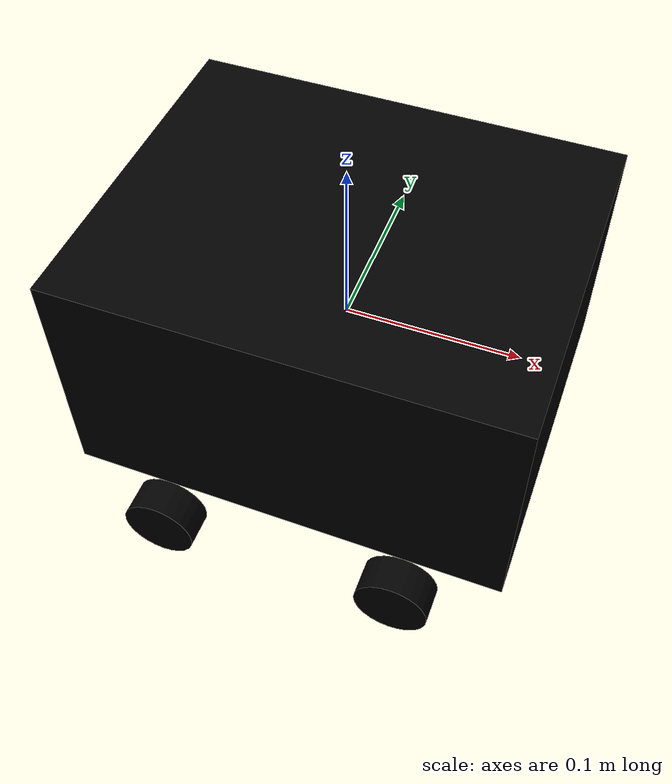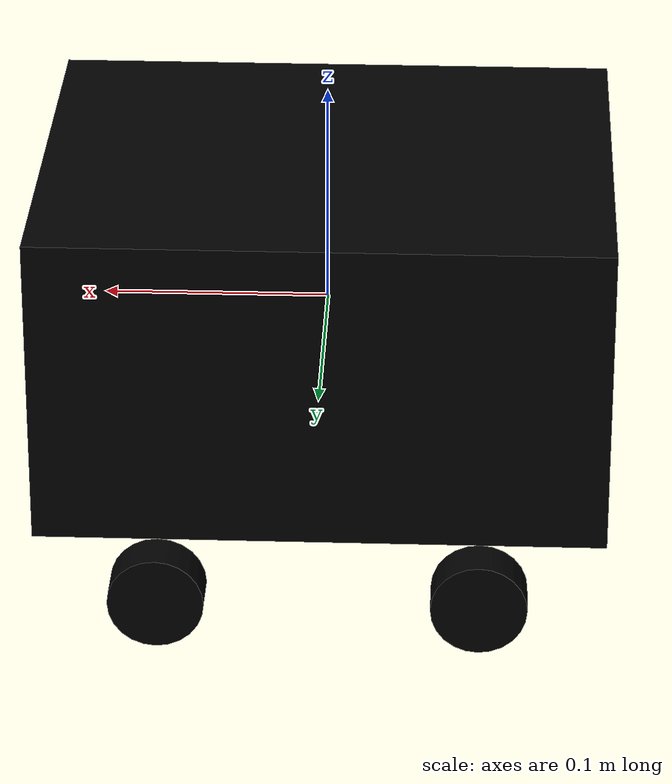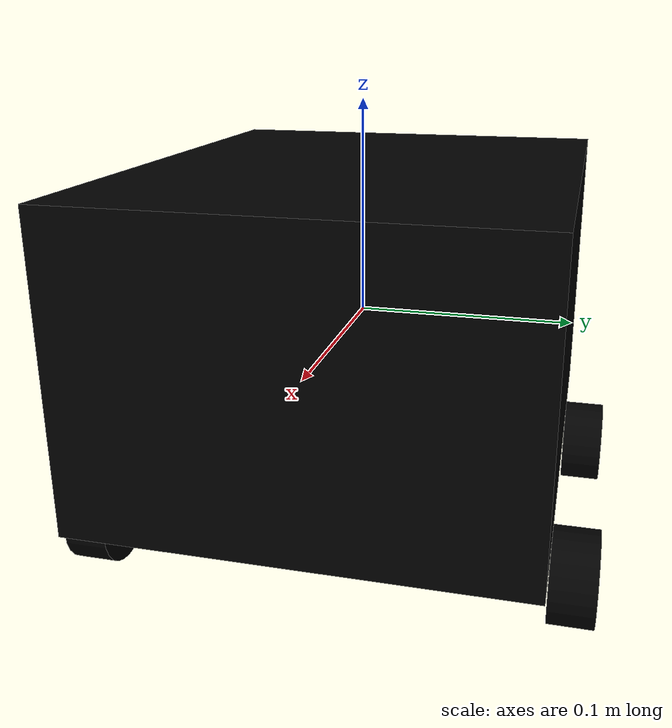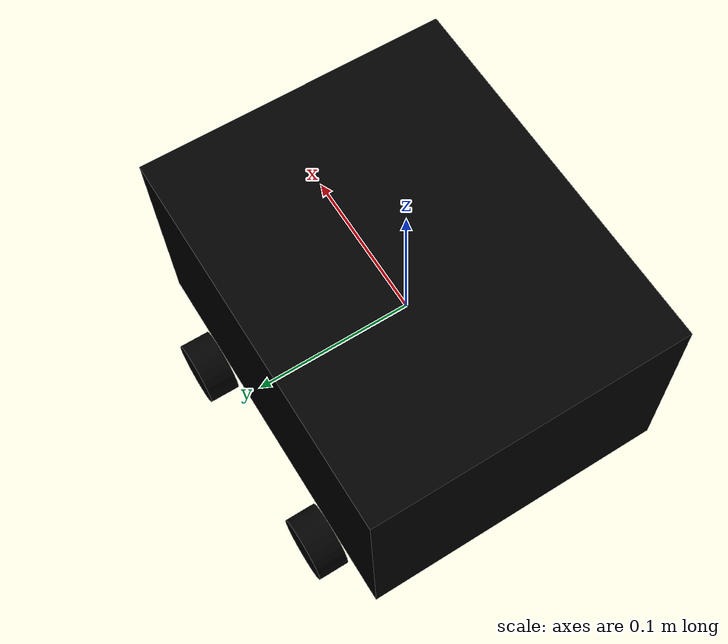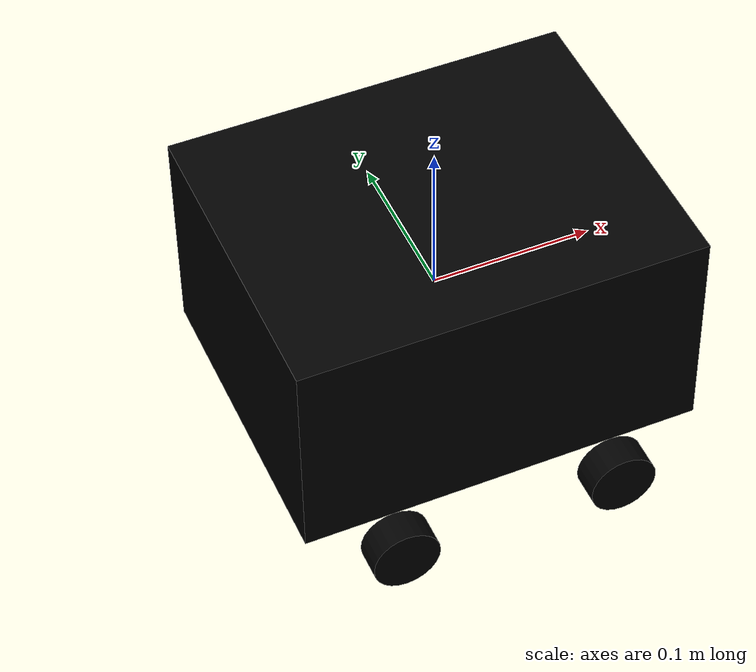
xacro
<?xml version="1.0"?>
<robot xmlns:xacro="http://www.ros.org/wiki/xacro" name="$(arg robot_name)">
  <!-- Define the dynamic robot name argument (defaults to obs1) -->
  <xacro:arg name="robot_name" default="obs1"/>

  <xacro:macro name="inertial_sphere" params="mass radius *origin">
    <inertial>
      <xacro:insert_block name="origin"/>
      <mass value="${mass}" />
      <inertia ixx="${(2/5) * mass * (radius*radius)}" ixy="0.0" ixz="0.0"
               iyy="${(2/5) * mass * (radius*radius)}" iyz="0.0"
               izz="${(2/5) * mass * (radius*radius)}" />
    </inertial>
  </xacro:macro>

  <xacro:macro name="inertial_box" params="mass x y z *origin">
    <inertial>
      <xacro:insert_block name="origin"/>
      <mass value="${mass}" />
      <inertia ixx="${(1/12) * mass * (y*y + z*z)}" ixy="0.0" ixz="0.0"
               iyy="${(1/12) * mass * (x*x + z*z)}" iyz="0.0"
               izz="${(1/12) * mass * (x*x + y*y)}" />
    </inertial>
  </xacro:macro>

  <xacro:macro name="inertial_cylinder" params="mass length radius *origin">
    <inertial>
      <xacro:insert_block name="origin"/>
      <mass value="${mass}" />
      <inertia ixx="${(1/12) * mass * (3*radius*radius + length*length)}" ixy="0.0" ixz="0.0"
               iyy="${(1/12) * mass * (3*radius*radius + length*length)}" iyz="0.0"
               izz="${(1/2) * mass * (radius*radius)}" />
    </inertial>
  </xacro:macro>

  <xacro:property name="chassis_length" value="0.25"/>
  <xacro:property name="chassis_width"  value="0.2"/>
  <xacro:property name="chassis_height" value="0.14"/>

  <xacro:property name="wheel_radius"    value="0.021"/>
  <xacro:property name="wheel_thickness" value="0.02"/>
  <xacro:property name="wheel_mass"      value="0.05"/>
  <xacro:property name="wheel_separation" value="0.22"/>
  <xacro:property name="wheel_offset_y"   value="${wheel_separation/2}"/>
  <xacro:property name="front_wheel_x"    value="0.07"/>
  <xacro:property name="back_wheel_x"     value="-0.07"/>
  <xacro:property name="wheel_center_z"   value="${-chassis_height/2 - wheel_radius}"/>

  <material name="white">
    <color rgba="1 1 1 1" />
  </material>
  <material name="orange">
    <color rgba="1 0.3 0.1 1"/>
  </material>
    <material name="black">
    <color rgba="0 0 0 1"/>
  </material>
  <material name="red">
    <color rgba="1 0 0 1"/>
  </material>

  <link name="base_link"/>

  <joint name="base_footprint_joint" type="fixed">
    <parent link="base_link"/>
    <child link="base_footprint"/>
    <origin xyz="0 0 -0.121" rpy="0 0 0"/>
  </joint>

  <link name="base_footprint"/>

  <joint name="chassis_joint" type="fixed">
    <parent link="base_link"/>
    <child link="chassis"/>
    <origin xyz="0 0 0"/>
  </joint>

  <link name="chassis">
    <visual>
      <origin xyz="0 0 0" rpy="0 0 0"/>
      <geometry>
        <box size="${chassis_length} ${chassis_width} ${chassis_height}"/>
      </geometry>
      <material name="black"/>
    </visual>
    <collision>
      <origin xyz="0 0 0"/>
      <geometry>
        <box size="${chassis_length} ${chassis_width} ${chassis_height}"/>
      </geometry>
    </collision>
    <xacro:inertial_box mass="1.0" x="${chassis_length}" y="${chassis_width}" z="${chassis_height}">
      <origin xyz="0 0 0"/>
    </xacro:inertial_box>
  </link>

  <gazebo reference="chassis">
    <material>Gazebo/Black</material>
  </gazebo>

  <joint name="front_left_wheel_joint" type="continuous">
    <parent link="base_link"/>
    <child link="front_left_wheel"/>
    <origin xyz="${front_wheel_x} ${wheel_offset_y} ${wheel_center_z}" rpy="-${pi/2} 0 0"/>
    <axis xyz="0 0 1"/>
  </joint>
  <link name="front_left_wheel">
    <visual>
      <origin xyz="0 0 0" rpy="0 0 0"/>
      <geometry>
        <cylinder radius="${wheel_radius}" length="${wheel_thickness}"/>
      </geometry>
      <material name="black"/>
    </visual>
    <collision>
      <origin xyz="0 0 0" rpy="0 0 0"/>
      <geometry>
        <cylinder radius="${wheel_radius}" length="${wheel_thickness}"/>
      </geometry>
    </collision>
    <xacro:inertial_cylinder mass="${wheel_mass}" length="${wheel_thickness}" radius="${wheel_radius}">
      <origin xyz="0 0 0" rpy="0 0 0"/>
    </xacro:inertial_cylinder>
  </link>
  <gazebo reference="front_left_wheel">
    <material>Gazebo/Black</material>
  </gazebo>

  <joint name="front_right_wheel_joint" type="continuous">
    <parent link="base_link"/>
    <child link="front_right_wheel"/>
    <origin xyz="${front_wheel_x} ${-wheel_offset_y} ${wheel_center_z}" rpy="${pi/2} 0 0"/>
    <axis xyz="0 0 -1"/>
  </joint>
  <link name="front_right_wheel">
    <visual>
      <origin xyz="0 0 0" rpy="0 0 0"/>
      <geometry>
        <cylinder radius="${wheel_radius}" length="${wheel_thickness}"/>
      </geometry>
      <material name="black"/>
    </visual>
    <collision>
      <origin xyz="0 0 0" rpy="0 0 0"/>
      <geometry>
        <cylinder radius="${wheel_radius}" length="${wheel_thickness}"/>
      </geometry>
    </collision>
    <xacro:inertial_cylinder mass="${wheel_mass}" length="${wheel_thickness}" radius="${wheel_radius}">
      <origin xyz="0 0 0" rpy="0 0 0"/>
    </xacro:inertial_cylinder>
  </link>
  <gazebo reference="front_right_wheel">
    <material>Gazebo/Black</material>
  </gazebo>

  <joint name="back_left_wheel_joint" type="continuous">
    <parent link="base_link"/>
    <child link="back_left_wheel"/>
    <origin xyz="${back_wheel_x} ${wheel_offset_y} ${wheel_center_z}" rpy="-${pi/2} 0 0"/>
    <axis xyz="0 0 1"/>
  </joint>
  <link name="back_left_wheel">
    <visual>
      <origin xyz="0 0 0" rpy="0 0 0"/>
      <geometry>
        <cylinder radius="${wheel_radius}" length="${wheel_thickness}"/>
      </geometry>
      <material name="black"/>
    </visual>
    <collision>
      <origin xyz="0 0 0" rpy="0 0 0"/>
      <geometry>
        <cylinder radius="${wheel_radius}" length="${wheel_thickness}"/>
      </geometry>
    </collision>
    <xacro:inertial_cylinder mass="${wheel_mass}" length="${wheel_thickness}" radius="${wheel_radius}">
      <origin xyz="0 0 0" rpy="0 0 0"/>
    </xacro:inertial_cylinder>
  </link>
  <gazebo reference="back_left_wheel">
    <material>Gazebo/Black</material>
  </gazebo>

  <joint name="back_right_wheel_joint" type="continuous">
    <parent link="base_link"/>
    <child link="back_right_wheel"/>
    <origin xyz="${back_wheel_x} ${-wheel_offset_y} ${wheel_center_z}" rpy="${pi/2} 0 0"/>
    <axis xyz="0 0 -1"/>
  </joint>
  <link name="back_right_wheel">
    <visual>
      <origin xyz="0 0 0" rpy="0 0 0"/>
      <geometry>
        <cylinder radius="${wheel_radius}" length="${wheel_thickness}"/>
      </geometry>
      <material name="black"/>
    </visual>
    <collision>
      <origin xyz="0 0 0" rpy="0 0 0"/>
      <geometry>
        <cylinder radius="${wheel_radius}" length="${wheel_thickness}"/>
      </geometry>
    </collision>
    <xacro:inertial_cylinder mass="${wheel_mass}" length="${wheel_thickness}" radius="${wheel_radius}">
      <origin xyz="0 0 0" rpy="0 0 0"/>
    </xacro:inertial_cylinder>
  </link>
  <gazebo reference="back_right_wheel">
    <material>Gazebo/Black</material>
  </gazebo>

  <!-- Modified Gazebo Diff Drive Plugin -->
  <gazebo>
    <plugin filename="libgazebo_ros_diff_drive.so" name="differential_drive_controller">
      <update_rate>100</update_rate>

      <ros>
        <!-- Puts the nodes inside a clean local namespace (e.g., /obs1) -->
        <namespace>/$(arg robot_name)</namespace>
        <!-- Removed the remap tag so it defaults to /obsX/cmd_vel -->
      </ros>

      <num_wheel_pairs>2</num_wheel_pairs>
      <left_joint>front_left_wheel_joint</left_joint>
      <right_joint>front_right_wheel_joint</right_joint>
      <left_joint>back_left_wheel_joint</left_joint>
      <right_joint>back_right_wheel_joint</right_joint>

      <wheel_separation>0.22</wheel_separation>
      <wheel_separation>0.22</wheel_separation>
      <wheel_diameter>0.021</wheel_diameter>
      <wheel_diameter>0.021</wheel_diameter>

      <max_wheel_torque>20</max_wheel_torque>
      <max_wheel_acceleration>1.0</max_wheel_acceleration>

      <publish_odom>true</publish_odom>
      <publish_odom_tf>true</publish_odom_tf>
      <publish_wheel_tf>true</publish_wheel_tf>
      <use_stamped_vel>false</use_stamped_vel>

      <!-- Separate TF tree frames to avoid frame collisions -->
      <odometry_frame>$(arg robot_name)/odom</odometry_frame>
      <robot_base_frame>$(arg robot_name)/base_link</robot_base_frame>
    </plugin>
  </gazebo>

</robot>
